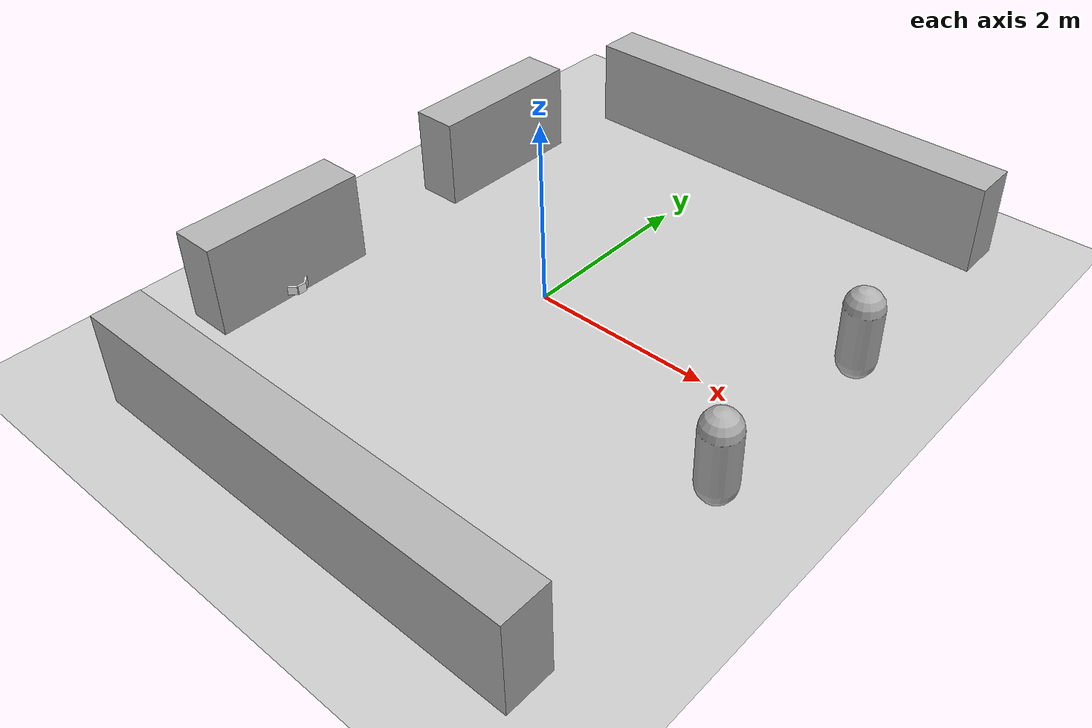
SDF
<sdf version='1.8'>
  <world name='empty'>
    <physics name='1ms' type='ignored'>
      <max_step_size>0.001</max_step_size>
      <real_time_factor>1</real_time_factor>
      <real_time_update_rate>1000</real_time_update_rate>
    </physics>
    <plugin
      filename="libignition-gazebo-physics-system.so"
      name="ignition::gazebo::systems::Physics">
    </plugin>
    <plugin
      filename="libignition-gazebo-user-commands-system.so"
      name="ignition::gazebo::systems::UserCommands">
    </plugin>
    <plugin
      filename="libignition-gazebo-scene-broadcaster-system.so"
      name="ignition::gazebo::systems::SceneBroadcaster">
    </plugin>
    <plugin
      filename="ignition-gazebo-imu-system"
      name="ignition::gazebo::systems::Imu">
    </plugin>
    <plugin
      filename="ignition-gazebo-sensors-system"
      name="ignition::gazebo::systems::Sensors">
      <render_engine>ogre2</render_engine>
    </plugin>
    <gravity>0 0 -9.8</gravity>
    <magnetic_field>6e-06 2.3e-05 -4.2e-05</magnetic_field>
    <atmosphere type='adiabatic'/>
    <scene>
      <ambient>0.4 0.4 0.4 1</ambient>
      <background>0.7 0.7 0.7 1</background>
      <shadows>true</shadows>
    </scene>
    <model name='ground_plane'>
      <static>true</static>
      <link name='link'>
        <collision name='collision'>
          <geometry>
            <plane>
              <normal>0 0 1</normal>
              <size>100 100</size>
            </plane>
          </geometry>
          <surface>
            <friction>
              <ode/>
            </friction>
            <bounce/>
            <contact/>
          </surface>
        </collision>
        <visual name='visual'>
          <geometry>
            <plane>
              <normal>0 0 1</normal>
              <size>100 100</size>
            </plane>
          </geometry>
          <material>
            <ambient>0.8 0.8 0.8 1</ambient>
            <diffuse>0.8 0.8 0.8 1</diffuse>
            <specular>0.8 0.8 0.8 1</specular>
          </material>
        </visual>
        <pose>0 0 0 0 -0 0</pose>
        <inertial>
          <pose>0 0 0 0 -0 0</pose>
          <mass>1</mass>
          <inertia>
            <ixx>1</ixx>
            <ixy>0</ixy>
            <ixz>0</ixz>
            <iyy>1</iyy>
            <iyz>0</iyz>
            <izz>1</izz>
          </inertia>
        </inertial>
        <enable_wind>false</enable_wind>
      </link>
      <pose>0 0 0 0 -0 0</pose>
      <self_collide>false</self_collide>
    </model>
    <model name='box'>
      <pose>0.554206 3.5 0.5 -0 -0 0</pose>
      <link name='box_link'>
        <inertial>
          <inertia>
            <ixx>0.16666</ixx>
            <ixy>0</ixy>
            <ixz>0</ixz>
            <iyy>0.16666</iyy>
            <iyz>0</iyz>
            <izz>0.16666</izz>
          </inertia>
          <mass>1</mass>
          <pose>0 0 0 0 -0 0</pose>
        </inertial>
        <collision name='box_collision'>
          <geometry>
            <box>
              <size>5 0.5 1</size>
            </box>
          </geometry>
          <surface>
            <friction>
              <ode/>
            </friction>
            <bounce/>
            <contact/>
          </surface>
        </collision>
        <visual name='box_visual'>
          <geometry>
            <box>
              <size>5 0.5 1</size>
            </box>
          </geometry>
          <material>
            <ambient>0.3 0.3 0.3 1</ambient>
            <diffuse>0.7 0.7 0.7 1</diffuse>
            <specular>1 1 1 1</specular>
          </material>
        </visual>
        <pose>0 0 0 0 -0 0</pose>
        <enable_wind>false</enable_wind>
      </link>
      <static>true</static>
      <self_collide>false</self_collide>
    </model>
    <model name='box_0'>
      <pose>0.592021 -3.5 0.5 -0 -0 0</pose>
      <link name='box_link'>
        <inertial>
          <inertia>
            <ixx>0.16666</ixx>
            <ixy>0</ixy>
            <ixz>0</ixz>
            <iyy>0.16666</iyy>
            <iyz>0</iyz>
            <izz>0.16666</izz>
          </inertia>
          <mass>1</mass>
          <pose>0 0 0 0 -0 0</pose>
        </inertial>
        <collision name='box_collision'>
          <geometry>
            <box>
              <size>5 0.5 1</size>
            </box>
          </geometry>
          <surface>
            <friction>
              <ode/>
            </friction>
            <bounce/>
            <contact/>
          </surface>
        </collision>
        <visual name='box_visual'>
          <geometry>
            <box>
              <size>5 0.5 1</size>
            </box>
          </geometry>
          <material>
            <ambient>0.3 0.3 0.3 1</ambient>
            <diffuse>0.7 0.7 0.7 1</diffuse>
            <specular>1 1 1 1</specular>
          </material>
        </visual>
        <pose>0 0 0 0 -0 0</pose>
        <enable_wind>false</enable_wind>
      </link>
      <static>true</static>
      <self_collide>false</self_collide>
    </model>
    <model name='capsule'>
      <pose>2.97269 -1.10293 0.5 0 -0 0</pose>
      <link name='capsule_link'>
        <inertial>
          <inertia>
            <ixx>0.074153999999999998</ixx>
            <ixy>0</ixy>
            <ixz>0</ixz>
            <iyy>0.074153999999999998</iyy>
            <iyz>0</iyz>
            <izz>0.018769000000000001</izz>
          </inertia>
          <mass>1</mass>
          <pose>0 0 0 0 -0 0</pose>
        </inertial>
        <collision name='capsule_collision'>
          <geometry>
            <capsule>
              <radius>0.20000000000000001</radius>
              <length>0.59999999999999998</length>
            </capsule>
          </geometry>
          <surface>
            <friction>
              <ode/>
            </friction>
            <bounce/>
            <contact/>
          </surface>
        </collision>
        <visual name='capsule_visual'>
          <geometry>
            <capsule>
              <radius>0.20000000000000001</radius>
              <length>0.59999999999999998</length>
            </capsule>
          </geometry>
          <material>
            <ambient>0.3 0.3 0.3 1</ambient>
            <diffuse>0.7 0.7 0.7 1</diffuse>
            <specular>1 1 1 1</specular>
          </material>
        </visual>
        <pose>0 0 0 0 -0 0</pose>
        <enable_wind>false</enable_wind>
      </link>
      <static>true</static>
      <self_collide>false</self_collide>
    </model>
    <model name='dock_station_funnel'>
      <pose>-1.875 -1.61384 0.1 0 0 0</pose>
      <static>true</static>

      <link name='center_face_link'>
        <pose>0 0 0 0 0 0</pose>
        <collision name='center_collision'>
          <geometry>
            <box><size>0.02 0.1 0.1</size></box>
          </geometry>
        </collision>
        <visual name='center_visual'>
          <geometry>
            <box><size>0.02 0.1 0.1</size></box>
          </geometry>
          <material>
            <ambient>1 1 1 1</ambient>
            <diffuse>1 1 1 1</diffuse>
            <pbr>
              <metal>
                <albedo_map>/home/salah/Master/projects/yahboom-ros2/src/yahboomcar_control_bringup/worlds/dock_marker_center.png</albedo_map>
                <metalness>0.0</metalness>
                <roughness>1.0</roughness>
              </metal>
            </pbr>
          </material>
        </visual>
      </link>

      <link name='left_face_link'>
        <pose>-0.042 -0.085 0 0 0 -0.785398</pose>
        <collision name='left_collision'>
          <geometry>
            <box><size>0.02 0.1 0.1</size></box>
          </geometry>
        </collision>
        <visual name='left_visual'>
          <geometry>
            <box><size>0.02 0.1 0.1</size></box>
          </geometry>
          <material>
            <ambient>1 1 1 1</ambient>
            <diffuse>1 1 1 1</diffuse>
            <pbr>
              <metal>
                <albedo_map>/home/salah/Master/projects/yahboom-ros2/src/yahboomcar_control_bringup/worlds/dock_marker_left.png</albedo_map>
                <metalness>0.0</metalness>
                <roughness>1.0</roughness>
              </metal>
            </pbr>
          </material>
        </visual>
      </link>

      <link name='right_face_link'>
        <pose>-0.042 0.085 0 0 0 0.785398</pose>
        <collision name='right_collision'>
          <geometry>
            <box><size>0.02 0.1 0.1</size></box>
          </geometry>
        </collision>
        <visual name='right_visual'>
          <geometry>
            <box><size>0.02 0.1 0.1</size></box>
          </geometry>
          <material>
            <ambient>1 1 1 1</ambient>
            <diffuse>1 1 1 1</diffuse>
            <pbr>
              <metal>
                <albedo_map>/home/salah/Master/projects/yahboom-ros2/src/yahboomcar_control_bringup/worlds/dock_marker_right.png</albedo_map>
                <metalness>0.0</metalness>
                <roughness>1.0</roughness>
              </metal>
            </pbr>
          </material>
        </visual>
      </link>
    </model>
    <model name='capsule_0'>
      <pose>3.01046 1.04841 0.5 0 -0 0</pose>
      <link name='capsule_link'>
        <inertial>
          <inertia>
            <ixx>0.074153999999999998</ixx>
            <ixy>0</ixy>
            <ixz>0</ixz>
            <iyy>0.074153999999999998</iyy>
            <iyz>0</iyz>
            <izz>0.018769000000000001</izz>
          </inertia>
          <mass>1</mass>
          <pose>0 0 0 0 -0 0</pose>
        </inertial>
        <collision name='capsule_collision'>
          <geometry>
            <capsule>
              <radius>0.20000000000000001</radius>
              <length>0.59999999999999998</length>
            </capsule>
          </geometry>
          <surface>
            <friction>
              <ode/>
            </friction>
            <bounce/>
            <contact/>
          </surface>
        </collision>
        <visual name='capsule_visual'>
          <geometry>
            <capsule>
              <radius>0.20000000000000001</radius>
              <length>0.59999999999999998</length>
            </capsule>
          </geometry>
          <material>
            <ambient>0.3 0.3 0.3 1</ambient>
            <diffuse>0.7 0.7 0.7 1</diffuse>
            <specular>1 1 1 1</specular>
          </material>
        </visual>
        <pose>0 0 0 0 -0 0</pose>
        <enable_wind>false</enable_wind>
      </link>
      <static>true</static>
      <self_collide>false</self_collide>
    </model>
    <model name='box_1'>
      <pose>-2.20 -1.61384 0.5 0 0 0</pose>
      <link name='box_link'>
        <inertial>
          <inertia>
            <ixx>0.16666</ixx>
            <ixy>0</ixy>
            <ixz>0</ixz>
            <iyy>0.16666</iyy>
            <iyz>0</iyz>
            <izz>0.16666</izz>
          </inertia>
          <mass>1</mass>
          <pose>0 0 0 0 -0 0</pose>
        </inertial>
        <collision name='box_collision'>
          <geometry>
            <box>
              <size>0.5 1.8 1</size>
            </box>
          </geometry>
          <surface>
            <friction>
              <ode/>
            </friction>
            <bounce/>
            <contact/>
          </surface>
        </collision>
        <visual name='box_visual'>
          <geometry>
            <box>
              <size>0.5 1.8 1</size>
            </box>
          </geometry>
          <material>
            <ambient>0.3 0.3 0.3 1</ambient>
            <diffuse>0.7 0.7 0.7 1</diffuse>
            <specular>1 1 1 1</specular>
          </material>
        </visual>
        <pose>0 0 0 0 -0 0</pose>
        <enable_wind>false</enable_wind>
      </link>
      <static>true</static>
      <self_collide>false</self_collide>
    </model>
    <model name='box_2'>
      <pose>-2.20 1.51693 0.5 0 -0 0</pose>
      <link name='box_link'>
        <inertial>
          <inertia>
            <ixx>0.16666</ixx>
            <ixy>0</ixy>
            <ixz>0</ixz>
            <iyy>0.16666</iyy>
            <iyz>0</iyz>
            <izz>0.16666</izz>
          </inertia>
          <mass>1</mass>
          <pose>0 0 0 0 -0 0</pose>
        </inertial>
        <collision name='box_collision'>
          <geometry>
            <box>
              <size>0.5 1.8 1</size>
            </box>
          </geometry>
          <surface>
            <friction>
              <ode/>
            </friction>
            <bounce/>
            <contact/>
          </surface>
        </collision>
        <visual name='box_visual'>
          <geometry>
            <box>
              <size>0.5 1.8 1</size>
            </box>
          </geometry>
          <material>
            <ambient>0.3 0.3 0.3 1</ambient>
            <diffuse>0.7 0.7 0.7 1</diffuse>
            <specular>1 1 1 1</specular>
          </material>
        </visual>
        <pose>0 0 0 0 -0 0</pose>
        <enable_wind>false</enable_wind>
      </link>
      <static>true</static>
      <self_collide>false</self_collide>
    </model>
    <light name='sun' type='directional'>
      <pose>0 0 10 0 -0 0</pose>
      <cast_shadows>false</cast_shadows>
      <intensity>1</intensity>
      <direction>-0.5 0.1 -0.9</direction>
      <diffuse>0.8 0.8 0.8 1</diffuse>
      <specular>0.2 0.2 0.2 1</specular>
      <attenuation>
        <range>1000</range>
        <linear>0.01</linear>
        <constant>0.90000000000000002</constant>
        <quadratic>0.001</quadratic>
      </attenuation>
      <spot>
        <inner_angle>0</inner_angle>
        <outer_angle>0</outer_angle>
        <falloff>0</falloff>
      </spot>
    </light>
  </world>
</sdf>
